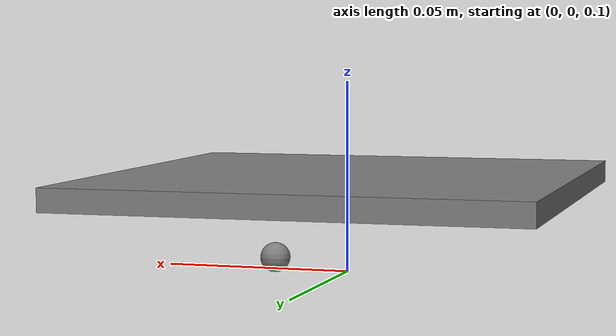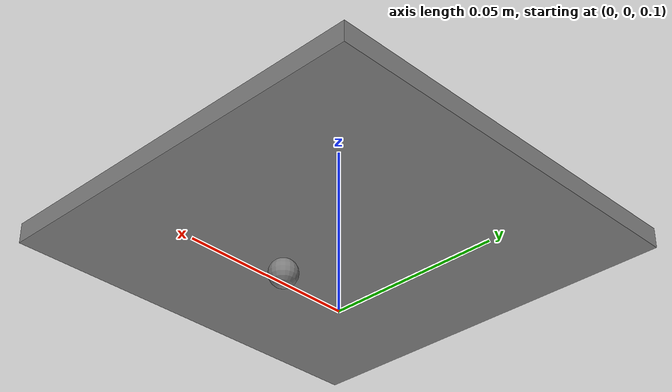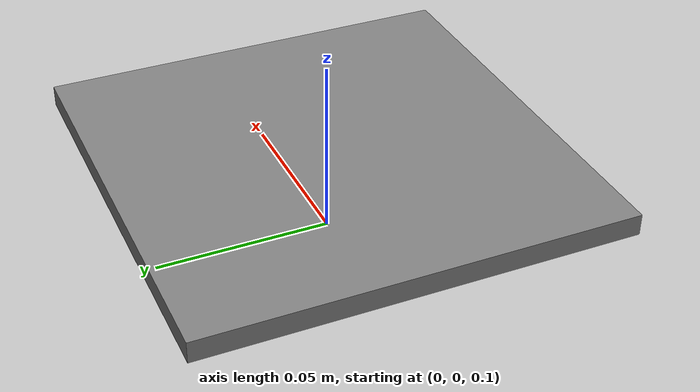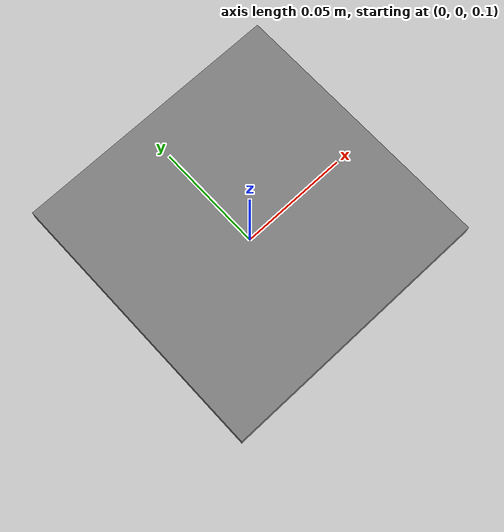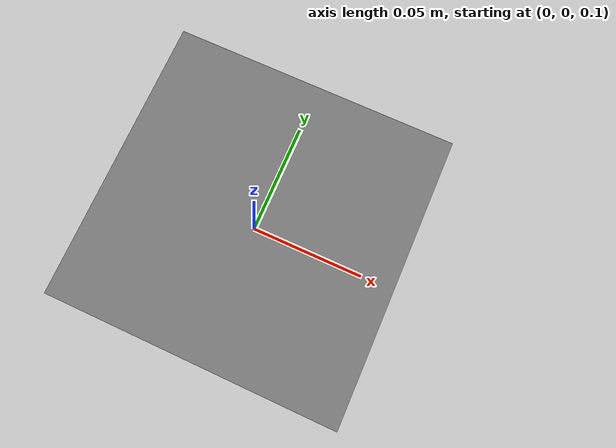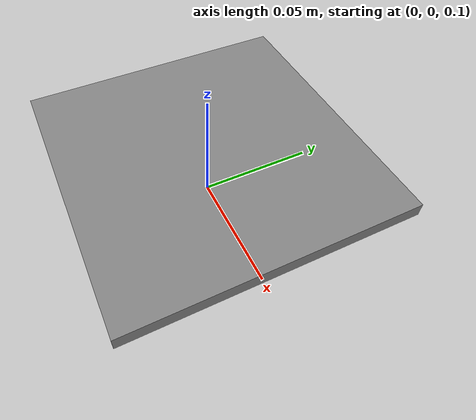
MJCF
<mujoco>
  <option gravity="0 0 -9.81" timestep="0.001"/>
  <worldbody>
    <body name="body" pos="0 0 0.123">
      <freejoint/>
      <geom type="box" pos="0 0 0" size="0.06 0.06 0.003" mass="0.2"/>
      <geom type="sphere" pos="0.02 0 -0.02" size="0.004" mass="0.1"/>
    </body>
  </worldbody>
</mujoco>
